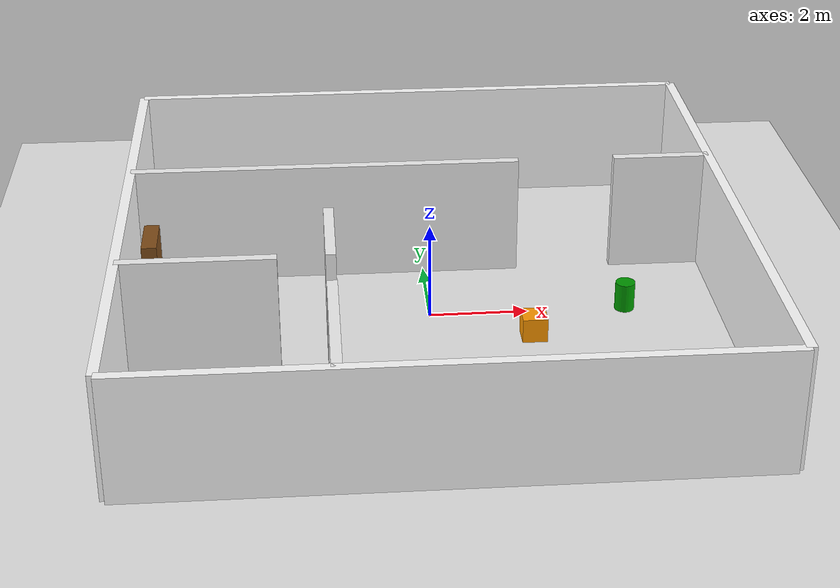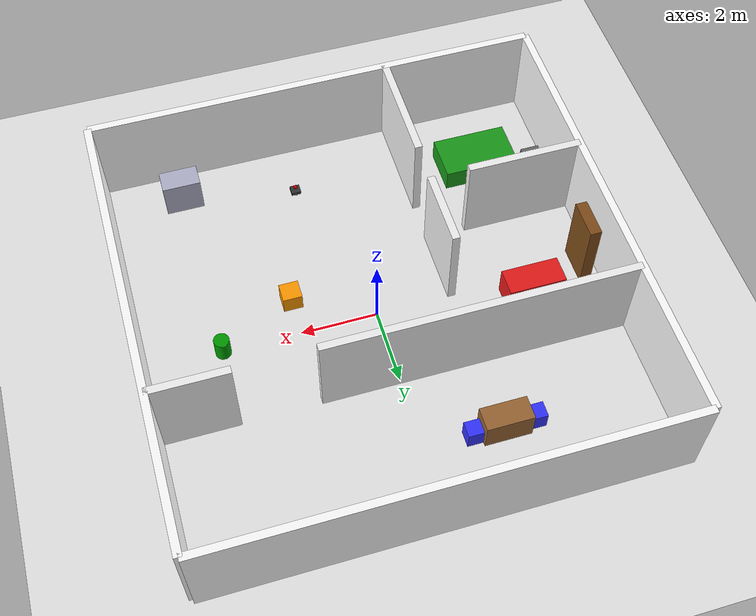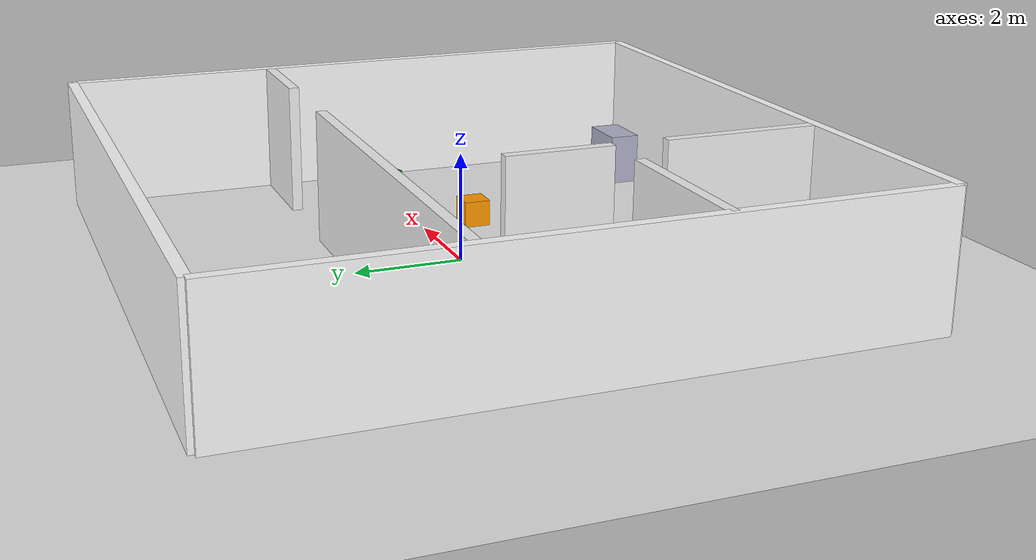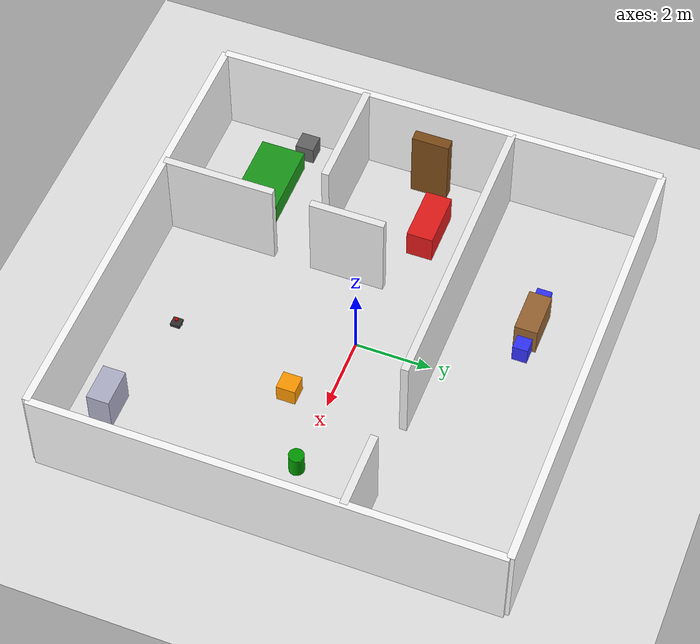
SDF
<?xml version="1.0" encoding="utf-8"?>
<sdf version="1.9">
  <world name="lab2_gulyaev">
    <scene>
      <ambient>1 1 1 1</ambient>
      <background>0.8 0.8 0.9 1</background>
      <shadows>false</shadows>
    </scene>
    <physics type="ode">
      <max_step_size>0.003</max_step_size>
      <real_time_factor>1.0</real_time_factor>
    </physics>
    <plugin filename="gz-sim-physics-system" name="gz::sim::systems::Physics"/>
    <plugin filename="gz-sim-user-commands-system" name="gz::sim::systems::UserCommands"/>
    <plugin filename="gz-sim-scene-broadcaster-system" name="gz::sim::systems::SceneBroadcaster"/>
    <plugin filename="gz-sim-sensors-system" name="gz::sim::systems::Sensors">
      <render_engine>ogre2</render_engine>
    </plugin>
    <plugin filename="gz-sim-contact-system" name="gz::sim::systems::Contact"/>

    <light type="directional" name="sun">
      <pose>0 0 10 0 -0.5 0</pose>
      <diffuse>1 1 1 1</diffuse>
      <specular>0.1 0.1 0.1 1</specular>
      <direction>-0.5 0.1 -0.9</direction>
    </light>

    <model name="ground">
      <static>true</static>
      <link name="l">
        <collision name="c"><geometry><plane><size>20 20</size></plane></geometry></collision>
        <visual name="v"><geometry><plane><size>20 20</size></plane></geometry>
          <material><ambient>0.9 0.9 0.9 1</ambient></material>
        </visual>
      </link>
    </model>

    <!-- PERIMETER 12x12 -->
    <model name="w_north"><static>true</static><pose>0 6 1.25 0 0 0</pose><link name="l"><collision name="c"><geometry><box><size>12 0.2 2.5</size></box></geometry></collision><visual name="v"><geometry><box><size>12 0.2 2.5</size></box></geometry><material><ambient>1 1 1 1</ambient></material></visual></link></model>
    <model name="w_south"><static>true</static><pose>0 -6 1.25 0 0 0</pose><link name="l"><collision name="c"><geometry><box><size>12 0.2 2.5</size></box></geometry></collision><visual name="v"><geometry><box><size>12 0.2 2.5</size></box></geometry><material><ambient>1 1 1 1</ambient></material></visual></link></model>
    <model name="w_east"><static>true</static><pose>6 0 1.25 0 0 1.5708</pose><link name="l"><collision name="c"><geometry><box><size>12 0.2 2.5</size></box></geometry></collision><visual name="v"><geometry><box><size>12 0.2 2.5</size></box></geometry><material><ambient>1 1 1 1</ambient></material></visual></link></model>
    <model name="w_west"><static>true</static><pose>-6 0 1.25 0 0 1.5708</pose><link name="l"><collision name="c"><geometry><box><size>12 0.2 2.5</size></box></geometry></collision><visual name="v"><geometry><box><size>12 0.2 2.5</size></box></geometry><material><ambient>1 1 1 1</ambient></material></visual></link></model>

    <!-- WALL y=2: room1 top, gap at x=3..5 -->
    <model name="w5a"><static>true</static><pose>-2 2 1.25 0 0 0</pose><link name="l"><collision name="c"><geometry><box><size>8 0.2 2.5</size></box></geometry></collision><visual name="v"><geometry><box><size>8 0.2 2.5</size></box></geometry><material><ambient>0.95 0.95 0.95 1</ambient></material></visual></link></model>
    <model name="w5b"><static>true</static><pose>5 2 1.25 0 0 0</pose><link name="l"><collision name="c"><geometry><box><size>2 0.2 2.5</size></box></geometry></collision><visual name="v"><geometry><box><size>2 0.2 2.5</size></box></geometry><material><ambient>0.95 0.95 0.95 1</ambient></material></visual></link></model>

    <!-- WALL x=-2 vertical: rooms 2,3 left side, gap at y=0..1.5 -->
    <model name="w6a"><static>true</static><pose>-2 -4.5 1.25 0 0 1.5708</pose><link name="l"><collision name="c"><geometry><box><size>3 0.2 2.5</size></box></geometry></collision><visual name="v"><geometry><box><size>3 0.2 2.5</size></box></geometry><material><ambient>0.95 0.95 0.95 1</ambient></material></visual></link></model>
    <model name="w6b"><static>true</static><pose>-2 -1 1.25 0 0 1.5708</pose><link name="l"><collision name="c"><geometry><box><size>2 0.2 2.5</size></box></geometry></collision><visual name="v"><geometry><box><size>2 0.2 2.5</size></box></geometry><material><ambient>0.95 0.95 0.95 1</ambient></material></visual></link></model>

    <!-- WALL y=-2: splits room3 from corridor, gap at x=0..1.5 -->
    <model name="w7a"><static>true</static><pose>-4.5 -2 1.25 0 0 0</pose><link name="l"><collision name="c"><geometry><box><size>3 0.2 2.5</size></box></geometry></collision><visual name="v"><geometry><box><size>3 0.2 2.5</size></box></geometry><material><ambient>0.95 0.95 0.95 1</ambient></material></visual></link></model>

    <!-- 10 OBJECTS -->
    <!-- Room 1 (top, y=2..6) -->
    <model name="table"><static>true</static><pose>-2 4 0.4 0 0 0</pose><link name="l"><collision name="c"><geometry><box><size>1.2 0.6 0.8</size></box></geometry></collision><visual name="v"><geometry><box><size>1.2 0.6 0.8</size></box></geometry><material><ambient>0.6 0.4 0.2 1</ambient></material></visual></link></model>
    <model name="chair1"><static>true</static><pose>-2.8 4 0.25 0 0 0</pose><link name="l"><collision name="c"><geometry><box><size>0.4 0.4 0.5</size></box></geometry></collision><visual name="v"><geometry><box><size>0.4 0.4 0.5</size></box></geometry><material><ambient>0.2 0.2 1 1</ambient></material></visual></link></model>
    <model name="chair2"><static>true</static><pose>-1.2 4 0.25 0 0 0</pose><link name="l"><collision name="c"><geometry><box><size>0.4 0.4 0.5</size></box></geometry></collision><visual name="v"><geometry><box><size>0.4 0.4 0.5</size></box></geometry><material><ambient>0.2 0.2 1 1</ambient></material></visual></link></model>

    <!-- Room 2 (left middle, x=-6..-2 y=-2..2) -->
    <model name="sofa"><static>true</static><pose>-4 0.5 0.4 0 0 0</pose><link name="l"><collision name="c"><geometry><box><size>1.5 0.7 0.8</size></box></geometry></collision><visual name="v"><geometry><box><size>1.5 0.7 0.8</size></box></geometry><material><ambient>0.9 0.1 0.1 1</ambient></material></visual></link></model>
    <model name="bookshelf"><static>true</static><pose>-5.5 0 1 0 0 0</pose><link name="l"><collision name="c"><geometry><box><size>0.3 1 2</size></box></geometry></collision><visual name="v"><geometry><box><size>0.3 1 2</size></box></geometry><material><ambient>0.5 0.3 0.1 1</ambient></material></visual></link></model>

    <!-- Room 3 (bottom left, x=-6..-2 y=-6..-2) -->
    <model name="bed"><static>true</static><pose>-4 -4 0.3 0 0 0</pose><link name="l"><collision name="c"><geometry><box><size>2 1.2 0.6</size></box></geometry></collision><visual name="v"><geometry><box><size>2 1.2 0.6</size></box></geometry><material><ambient>0.1 0.6 0.1 1</ambient></material></visual></link></model>
    <model name="nightstand"><static>true</static><pose>-5.5 -3.5 0.25 0 0 0</pose><link name="l"><collision name="c"><geometry><box><size>0.5 0.5 0.5</size></box></geometry></collision><visual name="v"><geometry><box><size>0.5 0.5 0.5</size></box></geometry><material><ambient>0.4 0.4 0.4 1</ambient></material></visual></link></model>

    <!-- Corridor (right side, x=-2..6, y=-6..2) -->
    <model name="sink"><static>true</static><pose>4 -5 0.5 0 0 0</pose><link name="l"><collision name="c"><geometry><box><size>1 0.6 1</size></box></geometry></collision><visual name="v"><geometry><box><size>1 0.6 1</size></box></geometry><material><ambient>0.7 0.7 0.8 1</ambient></material></visual></link></model>
    <model name="obstacle"><static>true</static><pose>2 -1 0.25 0 0 0</pose><link name="l"><collision name="c"><geometry><box><size>0.5 0.5 0.5</size></box></geometry></collision><visual name="v"><geometry><box><size>0.5 0.5 0.5</size></box></geometry><material><ambient>1 0.6 0 1</ambient></material></visual></link></model>
    <model name="plant"><static>true</static><pose>4 0 0.3 0 0 0</pose><link name="l"><collision name="c"><geometry><cylinder><radius>0.2</radius><length>0.6</length></cylinder></geometry></collision><visual name="v"><geometry><cylinder><radius>0.2</radius><length>0.6</length></cylinder></geometry><material><ambient>0 0.6 0 1</ambient></material></visual></link></model>

    <!-- ROBOT in corridor -->
    <model name="waffle_pi" canonical_link="base_link">
      <pose>1 -4.5 0.01 0 0 0</pose>
      <link name="base_link">
        <inertial><mass>1.8</mass><inertia><ixx>0.023</ixx><iyy>0.023</iyy><izz>0.032</izz></inertia></inertial>
        <collision name="c"><geometry><box><size>0.26 0.26 0.12</size></box></geometry></collision>
        <visual name="v"><geometry><box><size>0.26 0.26 0.12</size></box></geometry><material><ambient>0.2 0.2 0.2 1</ambient></material></visual>
      </link>
      <link name="lidar_link">
        <pose>0 0 0.15 0 0 0</pose>
        <inertial><mass>0.12</mass><inertia><ixx>0.0001</ixx><iyy>0.0001</iyy><izz>0.0001</izz></inertia></inertial>
        <visual name="v"><geometry><cylinder><radius>0.05</radius><length>0.04</length></cylinder></geometry><material><ambient>0.8 0 0 1</ambient></material></visual>
        <sensor name="lidar" type="gpu_lidar">
          <always_on>true</always_on>
          <update_rate>5</update_rate>
          <topic>scan</topic>
          <lidar>
            <scan><horizontal><samples>360</samples><resolution>1</resolution><min_angle>0</min_angle><max_angle>6.28</max_angle></horizontal></scan>
            <range><min>0.12</min><max>3.5</max><resolution>0.015</resolution></range>
          </lidar>
        </sensor>
      </link>
      <joint name="lidar_joint" type="fixed"><parent>base_link</parent><child>lidar_link</child></joint>
      <link name="left_wheel">
        <pose>0 0.14 0 -1.5708 0 0</pose>
        <inertial><mass>0.1</mass><inertia><ixx>0.0001</ixx><iyy>0.0001</iyy><izz>0.0001</izz></inertia></inertial>
        <collision name="c"><geometry><cylinder><radius>0.033</radius><length>0.018</length></cylinder></geometry><surface><friction><ode><mu>1</mu><mu2>1</mu2></ode></friction></surface></collision>
        <visual name="v"><geometry><cylinder><radius>0.033</radius><length>0.018</length></cylinder></geometry><material><ambient>0.1 0.1 0.1 1</ambient></material></visual>
      </link>
      <joint name="left_wheel_joint" type="revolute"><parent>base_link</parent><child>left_wheel</child><axis><xyz>0 0 1</xyz></axis></joint>
      <link name="right_wheel">
        <pose>0 -0.14 0 -1.5708 0 0</pose>
        <inertial><mass>0.1</mass><inertia><ixx>0.0001</ixx><iyy>0.0001</iyy><izz>0.0001</izz></inertia></inertial>
        <collision name="c"><geometry><cylinder><radius>0.033</radius><length>0.018</length></cylinder></geometry><surface><friction><ode><mu>1</mu><mu2>1</mu2></ode></friction></surface></collision>
        <visual name="v"><geometry><cylinder><radius>0.033</radius><length>0.018</length></cylinder></geometry><material><ambient>0.1 0.1 0.1 1</ambient></material></visual>
      </link>
      <joint name="right_wheel_joint" type="revolute"><parent>base_link</parent><child>right_wheel</child><axis><xyz>0 0 1</xyz></axis></joint>
      <link name="caster">
        <pose>-0.1 0 -0.015 0 0 0</pose>
        <inertial><mass>0.05</mass><inertia><ixx>0.00001</ixx><iyy>0.00001</iyy><izz>0.00001</izz></inertia></inertial>
        <collision name="c"><geometry><sphere><radius>0.018</radius></sphere></geometry><surface><friction><ode><mu>0.0</mu><mu2>0.0</mu2></ode></friction></surface></collision>
      </link>
      <joint name="caster_joint" type="fixed"><parent>base_link</parent><child>caster</child></joint>
      <plugin filename="gz-sim-diff-drive-system" name="gz::sim::systems::DiffDrive">
        <left_joint>left_wheel_joint</left_joint>
        <right_joint>right_wheel_joint</right_joint>
        <wheel_separation>0.287</wheel_separation>
        <wheel_radius>0.033</wheel_radius>
        <odom_publish_frequency>30</odom_publish_frequency>
        <topic>cmd_vel</topic>
        <odom_topic>odom</odom_topic>
        <tf_topic>tf</tf_topic>
        <frame_id>odom</frame_id>
        <child_frame_id>base_link</child_frame_id>
      </plugin>
      <plugin filename="gz-sim-joint-state-publisher-system" name="gz::sim::systems::JointStatePublisher"/>
    </model>
  </world>
</sdf>
